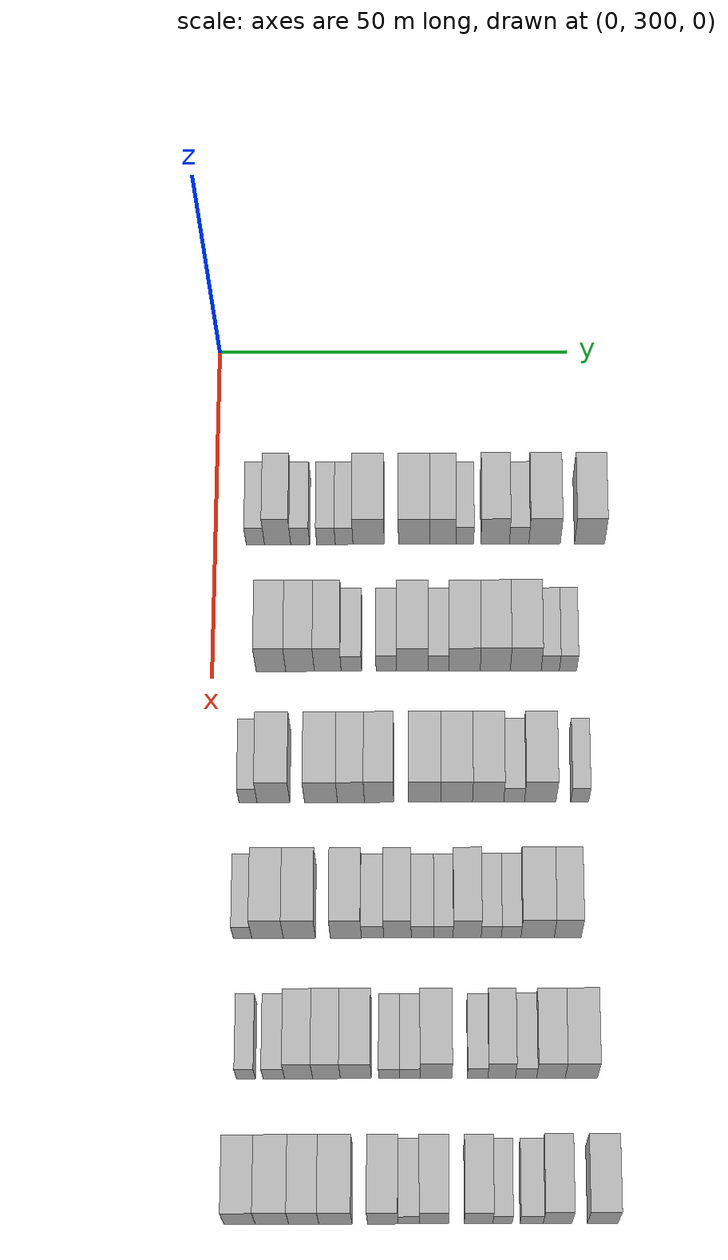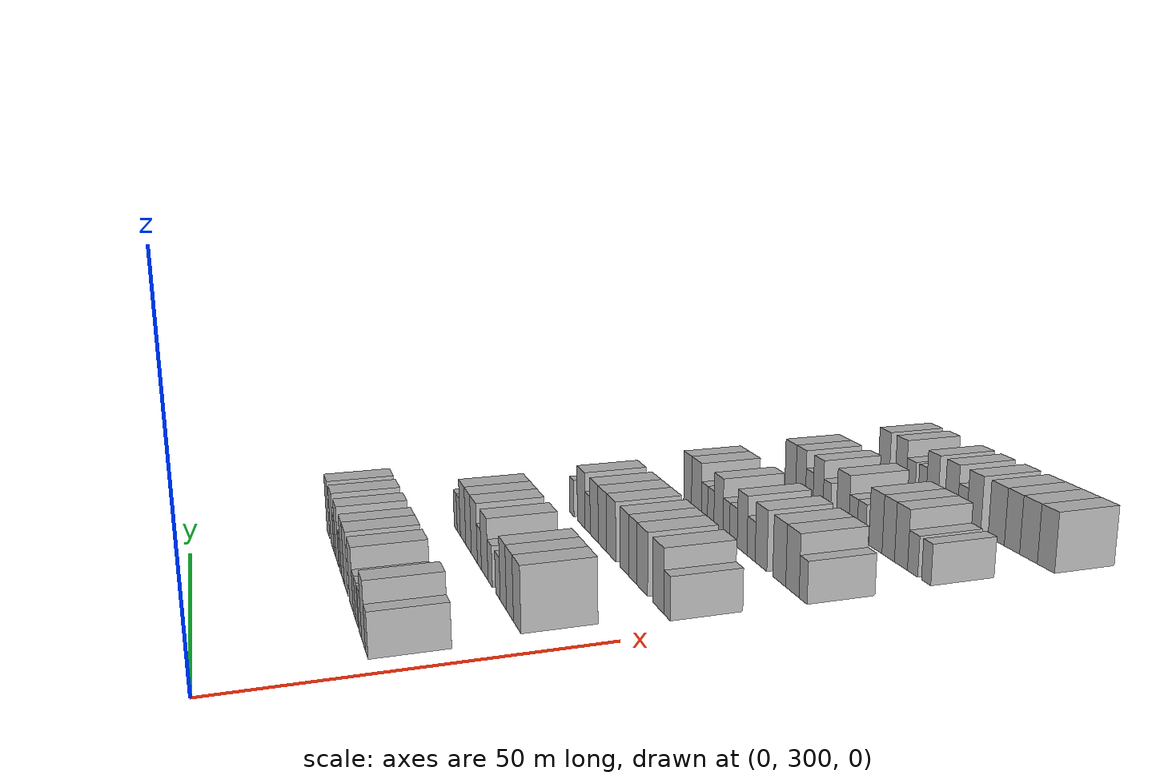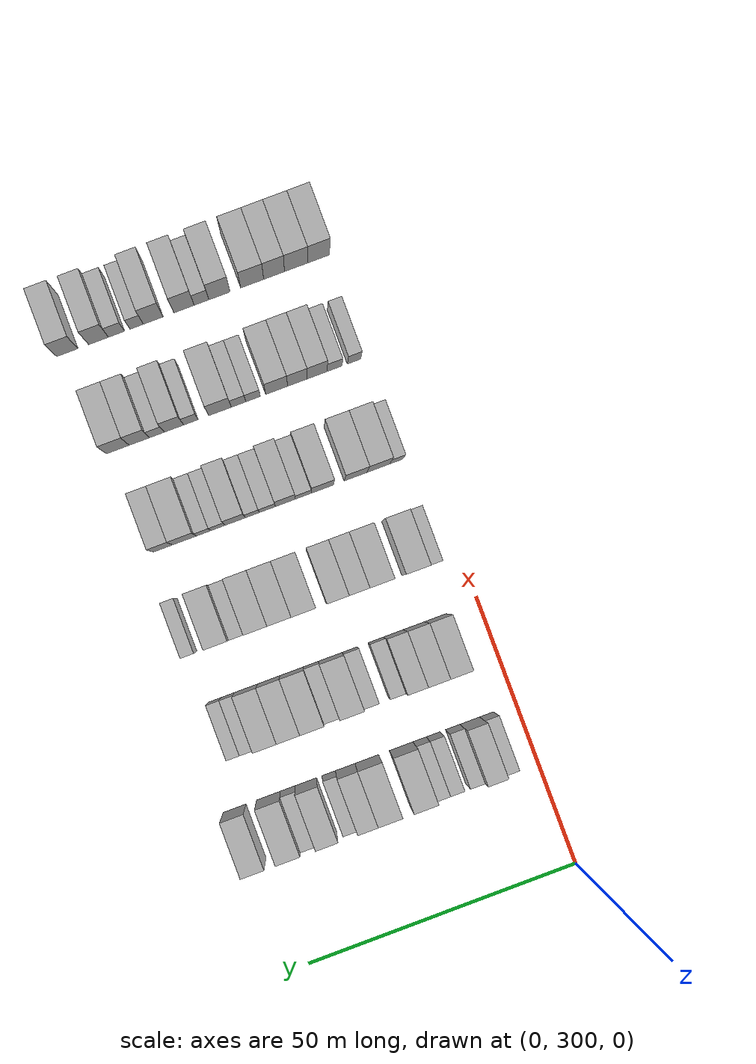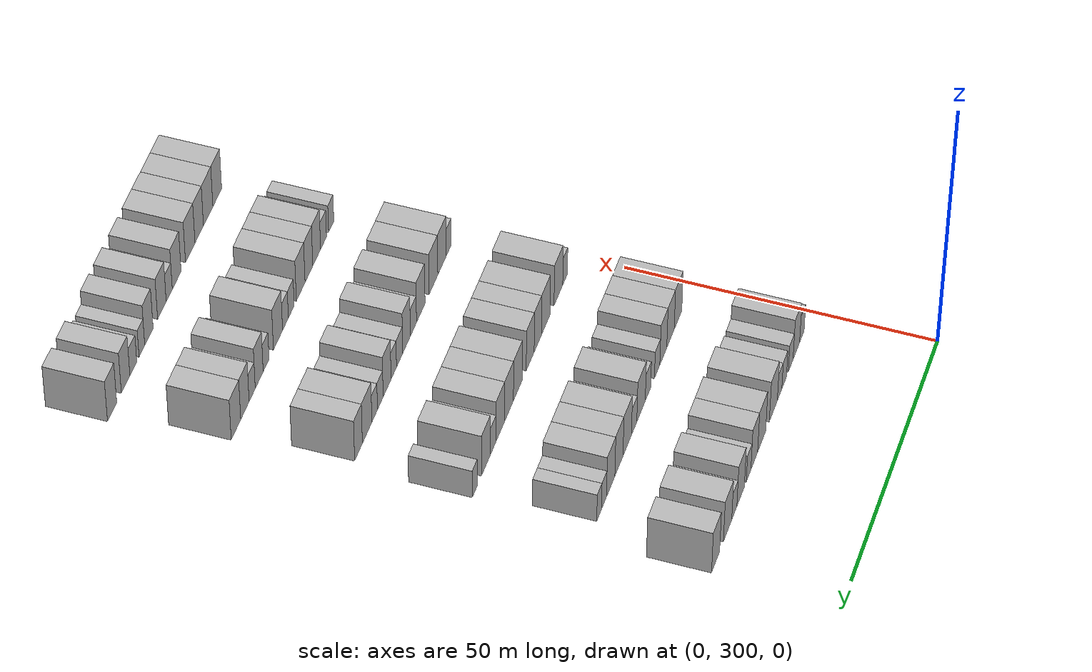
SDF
<sdf version="1.6">
 <world name="default">
  <model name="building_169">
   <static>1</static>
   <pose>25.0000 305.5659 0 0.000000 0.000000 0.000000</pose>
   <link name="link">
    <pose>0 0 3.00 0 0 0</pose>
    <collision name="collision"><geometry><box><size>10.0000 2.5611 6.0000</size></box></geometry></collision>
    <visual name="visual">
     <cast_shadows>0</cast_shadows>
     <geometry><box><size>10.0000 2.5611 6.0000</size></box></geometry>
     <material>
      <script>
       <uri>model://HANNAS_wall/materials/scripts</uri>
       <uri>model://HANNAS_wall/materials/textures</uri>
       <name>vrc/HANNAS_wall</name>
      </script>
     </material>
    </visual>
   </link>
  </model>
  <model name="building_170">
   <static>1</static>
   <pose>25.0000 308.6960 0 0.000000 0.000000 0.000000</pose>
   <link name="link">
    <pose>0 0 4.50 0 0 0</pose>
    <collision name="collision"><geometry><box><size>10.0000 3.6992 9.0000</size></box></geometry></collision>
    <visual name="visual">
     <cast_shadows>0</cast_shadows>
     <geometry><box><size>10.0000 3.6992 9.0000</size></box></geometry>
     <material>
      <script>
       <uri>model://HANNAS_wall/materials/scripts</uri>
       <uri>model://HANNAS_wall/materials/textures</uri>
       <name>vrc/HANNAS_wall</name>
      </script>
     </material>
    </visual>
   </link>
  </model>
  <model name="building_171">
   <static>1</static>
   <pose>25.0000 311.8833 0 0.000000 0.000000 0.000000</pose>
   <link name="link">
    <pose>0 0 3.00 0 0 0</pose>
    <collision name="collision"><geometry><box><size>10.0000 2.6753 6.0000</size></box></geometry></collision>
    <visual name="visual">
     <cast_shadows>0</cast_shadows>
     <geometry><box><size>10.0000 2.6753 6.0000</size></box></geometry>
     <material>
      <script>
       <uri>model://HANNAS_wall/materials/scripts</uri>
       <uri>model://HANNAS_wall/materials/textures</uri>
       <name>vrc/HANNAS_wall</name>
      </script>
     </material>
    </visual>
   </link>
  </model>
  <model name="building_172">
   <static>1</static>
   <pose>25.0000 315.5202 0 0.000000 0.000000 0.000000</pose>
   <link name="link">
    <pose>0 0 3.00 0 0 0</pose>
    <collision name="collision"><geometry><box><size>10.0000 2.5986 6.0000</size></box></geometry></collision>
    <visual name="visual">
     <cast_shadows>0</cast_shadows>
     <geometry><box><size>10.0000 2.5986 6.0000</size></box></geometry>
     <material>
      <script>
       <uri>model://HANNAS_wall/materials/scripts</uri>
       <uri>model://HANNAS_wall/materials/textures</uri>
       <name>vrc/HANNAS_wall</name>
      </script>
     </material>
    </visual>
   </link>
  </model>
  <model name="building_173">
   <static>1</static>
   <pose>25.0000 318.0655 0 0.000000 0.000000 0.000000</pose>
   <link name="link">
    <pose>0 0 3.00 0 0 0</pose>
    <collision name="collision"><geometry><box><size>10.0000 2.4919 6.0000</size></box></geometry></collision>
    <visual name="visual">
     <cast_shadows>0</cast_shadows>
     <geometry><box><size>10.0000 2.4919 6.0000</size></box></geometry>
     <material>
      <script>
       <uri>model://HANNAS_wall/materials/scripts</uri>
       <uri>model://HANNAS_wall/materials/textures</uri>
       <name>vrc/HANNAS_wall</name>
      </script>
     </material>
    </visual>
   </link>
  </model>
  <model name="building_174">
   <static>1</static>
   <pose>25.0000 321.5202 0 0.000000 0.000000 0.000000</pose>
   <link name="link">
    <pose>0 0 4.50 0 0 0</pose>
    <collision name="collision"><geometry><box><size>10.0000 4.4175 9.0000</size></box></geometry></collision>
    <visual name="visual">
     <cast_shadows>0</cast_shadows>
     <geometry><box><size>10.0000 4.4175 9.0000</size></box></geometry>
     <material>
      <script>
       <uri>model://HANNAS_wall/materials/scripts</uri>
       <uri>model://HANNAS_wall/materials/textures</uri>
       <name>vrc/HANNAS_wall</name>
      </script>
     </material>
    </visual>
   </link>
  </model>
  <model name="building_175">
   <static>1</static>
   <pose>25.0000 327.9294 0 0.000000 0.000000 0.000000</pose>
   <link name="link">
    <pose>0 0 4.50 0 0 0</pose>
    <collision name="collision"><geometry><box><size>10.0000 4.4010 9.0000</size></box></geometry></collision>
    <visual name="visual">
     <cast_shadows>0</cast_shadows>
     <geometry><box><size>10.0000 4.4010 9.0000</size></box></geometry>
     <material>
      <script>
       <uri>model://HANNAS_wall/materials/scripts</uri>
       <uri>model://HANNAS_wall/materials/textures</uri>
       <name>vrc/HANNAS_wall</name>
      </script>
     </material>
    </visual>
   </link>
  </model>
  <model name="building_176">
   <static>1</static>
   <pose>25.0000 331.9588 0 0.000000 0.000000 0.000000</pose>
   <link name="link">
    <pose>0 0 4.50 0 0 0</pose>
    <collision name="collision"><geometry><box><size>10.0000 3.6577 9.0000</size></box></geometry></collision>
    <visual name="visual">
     <cast_shadows>0</cast_shadows>
     <geometry><box><size>10.0000 3.6577 9.0000</size></box></geometry>
     <material>
      <script>
       <uri>model://HANNAS_wall/materials/scripts</uri>
       <uri>model://HANNAS_wall/materials/textures</uri>
       <name>vrc/HANNAS_wall</name>
      </script>
     </material>
    </visual>
   </link>
  </model>
  <model name="building_177">
   <static>1</static>
   <pose>25.0000 335.0451 0 0.000000 0.000000 0.000000</pose>
   <link name="link">
    <pose>0 0 3.00 0 0 0</pose>
    <collision name="collision"><geometry><box><size>10.0000 2.5151 6.0000</size></box></geometry></collision>
    <visual name="visual">
     <cast_shadows>0</cast_shadows>
     <geometry><box><size>10.0000 2.5151 6.0000</size></box></geometry>
     <material>
      <script>
       <uri>model://HANNAS_wall/materials/scripts</uri>
       <uri>model://HANNAS_wall/materials/textures</uri>
       <name>vrc/HANNAS_wall</name>
      </script>
     </material>
    </visual>
   </link>
  </model>
  <model name="building_178">
   <static>1</static>
   <pose>25.0000 339.3171 0 0.000000 0.000000 0.000000</pose>
   <link name="link">
    <pose>0 0 4.50 0 0 0</pose>
    <collision name="collision"><geometry><box><size>10.0000 4.0288 9.0000</size></box></geometry></collision>
    <visual name="visual">
     <cast_shadows>0</cast_shadows>
     <geometry><box><size>10.0000 4.0288 9.0000</size></box></geometry>
     <material>
      <script>
       <uri>model://HANNAS_wall/materials/scripts</uri>
       <uri>model://HANNAS_wall/materials/textures</uri>
       <name>vrc/HANNAS_wall</name>
      </script>
     </material>
    </visual>
   </link>
  </model>
  <model name="building_179">
   <static>1</static>
   <pose>25.0000 342.7024 0 0.000000 0.000000 0.000000</pose>
   <link name="link">
    <pose>0 0 3.00 0 0 0</pose>
    <collision name="collision"><geometry><box><size>10.0000 2.7419 6.0000</size></box></geometry></collision>
    <visual name="visual">
     <cast_shadows>0</cast_shadows>
     <geometry><box><size>10.0000 2.7419 6.0000</size></box></geometry>
     <material>
      <script>
       <uri>model://HANNAS_wall/materials/scripts</uri>
       <uri>model://HANNAS_wall/materials/textures</uri>
       <name>vrc/HANNAS_wall</name>
      </script>
     </material>
    </visual>
   </link>
  </model>
  <model name="building_180">
   <static>1</static>
   <pose>25.0000 346.2835 0 0.000000 0.000000 0.000000</pose>
   <link name="link">
    <pose>0 0 4.50 0 0 0</pose>
    <collision name="collision"><geometry><box><size>10.0000 4.4203 9.0000</size></box></geometry></collision>
    <visual name="visual">
     <cast_shadows>0</cast_shadows>
     <geometry><box><size>10.0000 4.4203 9.0000</size></box></geometry>
     <material>
      <script>
       <uri>model://HANNAS_wall/materials/scripts</uri>
       <uri>model://HANNAS_wall/materials/textures</uri>
       <name>vrc/HANNAS_wall</name>
      </script>
     </material>
    </visual>
   </link>
  </model>
  <model name="building_181">
   <static>1</static>
   <pose>25.0000 352.6140 0 0.000000 0.000000 0.000000</pose>
   <link name="link">
    <pose>0 0 4.50 0 0 0</pose>
    <collision name="collision"><geometry><box><size>10.0000 4.2406 9.0000</size></box></geometry></collision>
    <visual name="visual">
     <cast_shadows>0</cast_shadows>
     <geometry><box><size>10.0000 4.2406 9.0000</size></box></geometry>
     <material>
      <script>
       <uri>model://HANNAS_wall/materials/scripts</uri>
       <uri>model://HANNAS_wall/materials/textures</uri>
       <name>vrc/HANNAS_wall</name>
      </script>
     </material>
    </visual>
   </link>
  </model>
  <model name="building_340">
   <static>1</static>
   <pose>44.0000 308.0759 0 0.000000 0.000000 0.000000</pose>
   <link name="link">
    <pose>0 0 4.50 0 0 0</pose>
    <collision name="collision"><geometry><box><size>10.0000 4.0935 9.0000</size></box></geometry></collision>
    <visual name="visual">
     <cast_shadows>0</cast_shadows>
     <geometry><box><size>10.0000 4.0935 9.0000</size></box></geometry>
     <material>
      <script>
       <uri>model://HANNAS_wall/materials/scripts</uri>
       <uri>model://HANNAS_wall/materials/textures</uri>
       <name>vrc/HANNAS_wall</name>
      </script>
     </material>
    </visual>
   </link>
  </model>
  <model name="building_341">
   <static>1</static>
   <pose>44.0000 312.1047 0 0.000000 0.000000 0.000000</pose>
   <link name="link">
    <pose>0 0 4.50 0 0 0</pose>
    <collision name="collision"><geometry><box><size>10.0000 3.9641 9.0000</size></box></geometry></collision>
    <visual name="visual">
     <cast_shadows>0</cast_shadows>
     <geometry><box><size>10.0000 3.9641 9.0000</size></box></geometry>
     <material>
      <script>
       <uri>model://HANNAS_wall/materials/scripts</uri>
       <uri>model://HANNAS_wall/materials/textures</uri>
       <name>vrc/HANNAS_wall</name>
      </script>
     </material>
    </visual>
   </link>
  </model>
  <model name="building_342">
   <static>1</static>
   <pose>44.0000 315.9411 0 0.000000 0.000000 0.000000</pose>
   <link name="link">
    <pose>0 0 4.50 0 0 0</pose>
    <collision name="collision"><geometry><box><size>10.0000 3.7086 9.0000</size></box></geometry></collision>
    <visual name="visual">
     <cast_shadows>0</cast_shadows>
     <geometry><box><size>10.0000 3.7086 9.0000</size></box></geometry>
     <material>
      <script>
       <uri>model://HANNAS_wall/materials/scripts</uri>
       <uri>model://HANNAS_wall/materials/textures</uri>
       <name>vrc/HANNAS_wall</name>
      </script>
     </material>
    </visual>
   </link>
  </model>
  <model name="building_343">
   <static>1</static>
   <pose>44.0000 319.2170 0 0.000000 0.000000 0.000000</pose>
   <link name="link">
    <pose>0 0 3.00 0 0 0</pose>
    <collision name="collision"><geometry><box><size>10.0000 2.8432 6.0000</size></box></geometry></collision>
    <visual name="visual">
     <cast_shadows>0</cast_shadows>
     <geometry><box><size>10.0000 2.8432 6.0000</size></box></geometry>
     <material>
      <script>
       <uri>model://HANNAS_wall/materials/scripts</uri>
       <uri>model://HANNAS_wall/materials/textures</uri>
       <name>vrc/HANNAS_wall</name>
      </script>
     </material>
    </visual>
   </link>
  </model>
  <model name="building_344">
   <static>1</static>
   <pose>44.0000 324.0569 0 0.000000 0.000000 0.000000</pose>
   <link name="link">
    <pose>0 0 3.00 0 0 0</pose>
    <collision name="collision"><geometry><box><size>10.0000 2.8367 6.0000</size></box></geometry></collision>
    <visual name="visual">
     <cast_shadows>0</cast_shadows>
     <geometry><box><size>10.0000 2.8367 6.0000</size></box></geometry>
     <material>
      <script>
       <uri>model://HANNAS_wall/materials/scripts</uri>
       <uri>model://HANNAS_wall/materials/textures</uri>
       <name>vrc/HANNAS_wall</name>
      </script>
     </material>
    </visual>
   </link>
  </model>
  <model name="building_345">
   <static>1</static>
   <pose>44.0000 327.6818 0 0.000000 0.000000 0.000000</pose>
   <link name="link">
    <pose>0 0 4.50 0 0 0</pose>
    <collision name="collision"><geometry><box><size>10.0000 4.4131 9.0000</size></box></geometry></collision>
    <visual name="visual">
     <cast_shadows>0</cast_shadows>
     <geometry><box><size>10.0000 4.4131 9.0000</size></box></geometry>
     <material>
      <script>
       <uri>model://HANNAS_wall/materials/scripts</uri>
       <uri>model://HANNAS_wall/materials/textures</uri>
       <name>vrc/HANNAS_wall</name>
      </script>
     </material>
    </visual>
   </link>
  </model>
  <model name="building_346">
   <static>1</static>
   <pose>44.0000 331.2878 0 0.000000 0.000000 0.000000</pose>
   <link name="link">
    <pose>0 0 3.00 0 0 0</pose>
    <collision name="collision"><geometry><box><size>10.0000 2.7989 6.0000</size></box></geometry></collision>
    <visual name="visual">
     <cast_shadows>0</cast_shadows>
     <geometry><box><size>10.0000 2.7989 6.0000</size></box></geometry>
     <material>
      <script>
       <uri>model://HANNAS_wall/materials/scripts</uri>
       <uri>model://HANNAS_wall/materials/textures</uri>
       <name>vrc/HANNAS_wall</name>
      </script>
     </material>
    </visual>
   </link>
  </model>
  <model name="building_347">
   <static>1</static>
   <pose>44.0000 334.8622 0 0.000000 0.000000 0.000000</pose>
   <link name="link">
    <pose>0 0 4.50 0 0 0</pose>
    <collision name="collision"><geometry><box><size>10.0000 4.3498 9.0000</size></box></geometry></collision>
    <visual name="visual">
     <cast_shadows>0</cast_shadows>
     <geometry><box><size>10.0000 4.3498 9.0000</size></box></geometry>
     <material>
      <script>
       <uri>model://HANNAS_wall/materials/scripts</uri>
       <uri>model://HANNAS_wall/materials/textures</uri>
       <name>vrc/HANNAS_wall</name>
      </script>
     </material>
    </visual>
   </link>
  </model>
  <model name="building_348">
   <static>1</static>
   <pose>44.0000 339.1247 0 0.000000 0.000000 0.000000</pose>
   <link name="link">
    <pose>0 0 4.50 0 0 0</pose>
    <collision name="collision"><geometry><box><size>10.0000 4.1752 9.0000</size></box></geometry></collision>
    <visual name="visual">
     <cast_shadows>0</cast_shadows>
     <geometry><box><size>10.0000 4.1752 9.0000</size></box></geometry>
     <material>
      <script>
       <uri>model://HANNAS_wall/materials/scripts</uri>
       <uri>model://HANNAS_wall/materials/textures</uri>
       <name>vrc/HANNAS_wall</name>
      </script>
     </material>
    </visual>
   </link>
  </model>
  <model name="building_349">
   <static>1</static>
   <pose>44.0000 343.3476 0 0.000000 0.000000 0.000000</pose>
   <link name="link">
    <pose>0 0 4.50 0 0 0</pose>
    <collision name="collision"><geometry><box><size>10.0000 4.2706 9.0000</size></box></geometry></collision>
    <visual name="visual">
     <cast_shadows>0</cast_shadows>
     <geometry><box><size>10.0000 4.2706 9.0000</size></box></geometry>
     <material>
      <script>
       <uri>model://HANNAS_wall/materials/scripts</uri>
       <uri>model://HANNAS_wall/materials/textures</uri>
       <name>vrc/HANNAS_wall</name>
      </script>
     </material>
    </visual>
   </link>
  </model>
  <model name="building_350">
   <static>1</static>
   <pose>44.0000 346.7445 0 0.000000 0.000000 0.000000</pose>
   <link name="link">
    <pose>0 0 3.00 0 0 0</pose>
    <collision name="collision"><geometry><box><size>10.0000 2.5233 6.0000</size></box></geometry></collision>
    <visual name="visual">
     <cast_shadows>0</cast_shadows>
     <geometry><box><size>10.0000 2.5233 6.0000</size></box></geometry>
     <material>
      <script>
       <uri>model://HANNAS_wall/materials/scripts</uri>
       <uri>model://HANNAS_wall/materials/textures</uri>
       <name>vrc/HANNAS_wall</name>
      </script>
     </material>
    </visual>
   </link>
  </model>
  <model name="building_351">
   <static>1</static>
   <pose>44.0000 349.2096 0 0.000000 0.000000 0.000000</pose>
   <link name="link">
    <pose>0 0 3.00 0 0 0</pose>
    <collision name="collision"><geometry><box><size>10.0000 2.4067 6.0000</size></box></geometry></collision>
    <visual name="visual">
     <cast_shadows>0</cast_shadows>
     <geometry><box><size>10.0000 2.4067 6.0000</size></box></geometry>
     <material>
      <script>
       <uri>model://HANNAS_wall/materials/scripts</uri>
       <uri>model://HANNAS_wall/materials/textures</uri>
       <name>vrc/HANNAS_wall</name>
      </script>
     </material>
    </visual>
   </link>
  </model>
  <model name="building_510">
   <static>1</static>
   <pose>63.0000 305.2696 0 0.000000 0.000000 0.000000</pose>
   <link name="link">
    <pose>0 0 3.00 0 0 0</pose>
    <collision name="collision"><geometry><box><size>10.0000 2.4603 6.0000</size></box></geometry></collision>
    <visual name="visual">
     <cast_shadows>0</cast_shadows>
     <geometry><box><size>10.0000 2.4603 6.0000</size></box></geometry>
     <material>
      <script>
       <uri>model://HANNAS_wall/materials/scripts</uri>
       <uri>model://HANNAS_wall/materials/textures</uri>
       <name>vrc/HANNAS_wall</name>
      </script>
     </material>
    </visual>
   </link>
  </model>
  <model name="building_511">
   <static>1</static>
   <pose>63.0000 308.7327 0 0.000000 0.000000 0.000000</pose>
   <link name="link">
    <pose>0 0 4.50 0 0 0</pose>
    <collision name="collision"><geometry><box><size>10.0000 4.4658 9.0000</size></box></geometry></collision>
    <visual name="visual">
     <cast_shadows>0</cast_shadows>
     <geometry><box><size>10.0000 4.4658 9.0000</size></box></geometry>
     <material>
      <script>
       <uri>model://HANNAS_wall/materials/scripts</uri>
       <uri>model://HANNAS_wall/materials/textures</uri>
       <name>vrc/HANNAS_wall</name>
      </script>
     </material>
    </visual>
   </link>
  </model>
  <model name="building_512">
   <static>1</static>
   <pose>63.0000 315.1989 0 0.000000 0.000000 0.000000</pose>
   <link name="link">
    <pose>0 0 4.50 0 0 0</pose>
    <collision name="collision"><geometry><box><size>10.0000 4.4667 9.0000</size></box></geometry></collision>
    <visual name="visual">
     <cast_shadows>0</cast_shadows>
     <geometry><box><size>10.0000 4.4667 9.0000</size></box></geometry>
     <material>
      <script>
       <uri>model://HANNAS_wall/materials/scripts</uri>
       <uri>model://HANNAS_wall/materials/textures</uri>
       <name>vrc/HANNAS_wall</name>
      </script>
     </material>
    </visual>
   </link>
  </model>
  <model name="building_513">
   <static>1</static>
   <pose>63.0000 319.2697 0 0.000000 0.000000 0.000000</pose>
   <link name="link">
    <pose>0 0 4.50 0 0 0</pose>
    <collision name="collision"><geometry><box><size>10.0000 3.6749 9.0000</size></box></geometry></collision>
    <visual name="visual">
     <cast_shadows>0</cast_shadows>
     <geometry><box><size>10.0000 3.6749 9.0000</size></box></geometry>
     <material>
      <script>
       <uri>model://HANNAS_wall/materials/scripts</uri>
       <uri>model://HANNAS_wall/materials/textures</uri>
       <name>vrc/HANNAS_wall</name>
      </script>
     </material>
    </visual>
   </link>
  </model>
  <model name="building_514">
   <static>1</static>
   <pose>63.0000 323.1020 0 0.000000 0.000000 0.000000</pose>
   <link name="link">
    <pose>0 0 4.50 0 0 0</pose>
    <collision name="collision"><geometry><box><size>10.0000 3.9897 9.0000</size></box></geometry></collision>
    <visual name="visual">
     <cast_shadows>0</cast_shadows>
     <geometry><box><size>10.0000 3.9897 9.0000</size></box></geometry>
     <material>
      <script>
       <uri>model://HANNAS_wall/materials/scripts</uri>
       <uri>model://HANNAS_wall/materials/textures</uri>
       <name>vrc/HANNAS_wall</name>
      </script>
     </material>
    </visual>
   </link>
  </model>
  <model name="building_515">
   <static>1</static>
   <pose>63.0000 329.2971 0 0.000000 0.000000 0.000000</pose>
   <link name="link">
    <pose>0 0 4.50 0 0 0</pose>
    <collision name="collision"><geometry><box><size>10.0000 4.4004 9.0000</size></box></geometry></collision>
    <visual name="visual">
     <cast_shadows>0</cast_shadows>
     <geometry><box><size>10.0000 4.4004 9.0000</size></box></geometry>
     <material>
      <script>
       <uri>model://HANNAS_wall/materials/scripts</uri>
       <uri>model://HANNAS_wall/materials/textures</uri>
       <name>vrc/HANNAS_wall</name>
      </script>
     </material>
    </visual>
   </link>
  </model>
  <model name="building_516">
   <static>1</static>
   <pose>63.0000 333.6548 0 0.000000 0.000000 0.000000</pose>
   <link name="link">
    <pose>0 0 4.50 0 0 0</pose>
    <collision name="collision"><geometry><box><size>10.0000 4.3151 9.0000</size></box></geometry></collision>
    <visual name="visual">
     <cast_shadows>0</cast_shadows>
     <geometry><box><size>10.0000 4.3151 9.0000</size></box></geometry>
     <material>
      <script>
       <uri>model://HANNAS_wall/materials/scripts</uri>
       <uri>model://HANNAS_wall/materials/textures</uri>
       <name>vrc/HANNAS_wall</name>
      </script>
     </material>
    </visual>
   </link>
  </model>
  <model name="building_517">
   <static>1</static>
   <pose>63.0000 337.9384 0 0.000000 0.000000 0.000000</pose>
   <link name="link">
    <pose>0 0 4.50 0 0 0</pose>
    <collision name="collision"><geometry><box><size>10.0000 4.2520 9.0000</size></box></geometry></collision>
    <visual name="visual">
     <cast_shadows>0</cast_shadows>
     <geometry><box><size>10.0000 4.2520 9.0000</size></box></geometry>
     <material>
      <script>
       <uri>model://HANNAS_wall/materials/scripts</uri>
       <uri>model://HANNAS_wall/materials/textures</uri>
       <name>vrc/HANNAS_wall</name>
      </script>
     </material>
    </visual>
   </link>
  </model>
  <model name="building_518">
   <static>1</static>
   <pose>63.0000 341.4818 0 0.000000 0.000000 0.000000</pose>
   <link name="link">
    <pose>0 0 3.00 0 0 0</pose>
    <collision name="collision"><geometry><box><size>10.0000 2.8349 6.0000</size></box></geometry></collision>
    <visual name="visual">
     <cast_shadows>0</cast_shadows>
     <geometry><box><size>10.0000 2.8349 6.0000</size></box></geometry>
     <material>
      <script>
       <uri>model://HANNAS_wall/materials/scripts</uri>
       <uri>model://HANNAS_wall/materials/textures</uri>
       <name>vrc/HANNAS_wall</name>
      </script>
     </material>
    </visual>
   </link>
  </model>
  <model name="building_519">
   <static>1</static>
   <pose>63.0000 345.0499 0 0.000000 0.000000 0.000000</pose>
   <link name="link">
    <pose>0 0 4.50 0 0 0</pose>
    <collision name="collision"><geometry><box><size>10.0000 4.3014 9.0000</size></box></geometry></collision>
    <visual name="visual">
     <cast_shadows>0</cast_shadows>
     <geometry><box><size>10.0000 4.3014 9.0000</size></box></geometry>
     <material>
      <script>
       <uri>model://HANNAS_wall/materials/scripts</uri>
       <uri>model://HANNAS_wall/materials/textures</uri>
       <name>vrc/HANNAS_wall</name>
      </script>
     </material>
    </visual>
   </link>
  </model>
  <model name="building_520">
   <static>1</static>
   <pose>63.0000 350.4266 0 0.000000 0.000000 0.000000</pose>
   <link name="link">
    <pose>0 0 3.00 0 0 0</pose>
    <collision name="collision"><geometry><box><size>10.0000 2.4522 6.0000</size></box></geometry></collision>
    <visual name="visual">
     <cast_shadows>0</cast_shadows>
     <geometry><box><size>10.0000 2.4522 6.0000</size></box></geometry>
     <material>
      <script>
       <uri>model://HANNAS_wall/materials/scripts</uri>
       <uri>model://HANNAS_wall/materials/textures</uri>
       <name>vrc/HANNAS_wall</name>
      </script>
     </material>
    </visual>
   </link>
  </model>
  <model name="building_670">
   <static>1</static>
   <pose>82.0000 304.8961 0 0.000000 0.000000 0.000000</pose>
   <link name="link">
    <pose>0 0 3.00 0 0 0</pose>
    <collision name="collision"><geometry><box><size>10.0000 2.4703 6.0000</size></box></geometry></collision>
    <visual name="visual">
     <cast_shadows>0</cast_shadows>
     <geometry><box><size>10.0000 2.4703 6.0000</size></box></geometry>
     <material>
      <script>
       <uri>model://HANNAS_wall/materials/scripts</uri>
       <uri>model://HANNAS_wall/materials/textures</uri>
       <name>vrc/HANNAS_wall</name>
      </script>
     </material>
    </visual>
   </link>
  </model>
  <model name="building_671">
   <static>1</static>
   <pose>82.0000 308.2459 0 0.000000 0.000000 0.000000</pose>
   <link name="link">
    <pose>0 0 4.50 0 0 0</pose>
    <collision name="collision"><geometry><box><size>10.0000 4.2294 9.0000</size></box></geometry></collision>
    <visual name="visual">
     <cast_shadows>0</cast_shadows>
     <geometry><box><size>10.0000 4.2294 9.0000</size></box></geometry>
     <material>
      <script>
       <uri>model://HANNAS_wall/materials/scripts</uri>
       <uri>model://HANNAS_wall/materials/textures</uri>
       <name>vrc/HANNAS_wall</name>
      </script>
     </material>
    </visual>
   </link>
  </model>
  <model name="building_672">
   <static>1</static>
   <pose>82.0000 312.5039 0 0.000000 0.000000 0.000000</pose>
   <link name="link">
    <pose>0 0 4.50 0 0 0</pose>
    <collision name="collision"><geometry><box><size>10.0000 4.2866 9.0000</size></box></geometry></collision>
    <visual name="visual">
     <cast_shadows>0</cast_shadows>
     <geometry><box><size>10.0000 4.2866 9.0000</size></box></geometry>
     <material>
      <script>
       <uri>model://HANNAS_wall/materials/scripts</uri>
       <uri>model://HANNAS_wall/materials/textures</uri>
       <name>vrc/HANNAS_wall</name>
      </script>
     </material>
    </visual>
   </link>
  </model>
  <model name="building_673">
   <static>1</static>
   <pose>82.0000 318.7229 0 0.000000 0.000000 0.000000</pose>
   <link name="link">
    <pose>0 0 4.50 0 0 0</pose>
    <collision name="collision"><geometry><box><size>10.0000 4.1513 9.0000</size></box></geometry></collision>
    <visual name="visual">
     <cast_shadows>0</cast_shadows>
     <geometry><box><size>10.0000 4.1513 9.0000</size></box></geometry>
     <material>
      <script>
       <uri>model://HANNAS_wall/materials/scripts</uri>
       <uri>model://HANNAS_wall/materials/textures</uri>
       <name>vrc/HANNAS_wall</name>
      </script>
     </material>
    </visual>
   </link>
  </model>
  <model name="building_674">
   <static>1</static>
   <pose>82.0000 322.2878 0 0.000000 0.000000 0.000000</pose>
   <link name="link">
    <pose>0 0 3.00 0 0 0</pose>
    <collision name="collision"><geometry><box><size>10.0000 2.9786 6.0000</size></box></geometry></collision>
    <visual name="visual">
     <cast_shadows>0</cast_shadows>
     <geometry><box><size>10.0000 2.9786 6.0000</size></box></geometry>
     <material>
      <script>
       <uri>model://HANNAS_wall/materials/scripts</uri>
       <uri>model://HANNAS_wall/materials/textures</uri>
       <name>vrc/HANNAS_wall</name>
      </script>
     </material>
    </visual>
   </link>
  </model>
  <model name="building_675">
   <static>1</static>
   <pose>82.0000 325.6197 0 0.000000 0.000000 0.000000</pose>
   <link name="link">
    <pose>0 0 4.50 0 0 0</pose>
    <collision name="collision"><geometry><box><size>10.0000 3.6851 9.0000</size></box></geometry></collision>
    <visual name="visual">
     <cast_shadows>0</cast_shadows>
     <geometry><box><size>10.0000 3.6851 9.0000</size></box></geometry>
     <material>
      <script>
       <uri>model://HANNAS_wall/materials/scripts</uri>
       <uri>model://HANNAS_wall/materials/textures</uri>
       <name>vrc/HANNAS_wall</name>
      </script>
     </material>
    </visual>
   </link>
  </model>
  <model name="building_676">
   <static>1</static>
   <pose>82.0000 328.9576 0 0.000000 0.000000 0.000000</pose>
   <link name="link">
    <pose>0 0 3.00 0 0 0</pose>
    <collision name="collision"><geometry><box><size>10.0000 2.9906 6.0000</size></box></geometry></collision>
    <visual name="visual">
     <cast_shadows>0</cast_shadows>
     <geometry><box><size>10.0000 2.9906 6.0000</size></box></geometry>
     <material>
      <script>
       <uri>model://HANNAS_wall/materials/scripts</uri>
       <uri>model://HANNAS_wall/materials/textures</uri>
       <name>vrc/HANNAS_wall</name>
      </script>
     </material>
    </visual>
   </link>
  </model>
  <model name="building_677">
   <static>1</static>
   <pose>82.0000 331.7592 0 0.000000 0.000000 0.000000</pose>
   <link name="link">
    <pose>0 0 3.00 0 0 0</pose>
    <collision name="collision"><geometry><box><size>10.0000 2.6126 6.0000</size></box></geometry></collision>
    <visual name="visual">
     <cast_shadows>0</cast_shadows>
     <geometry><box><size>10.0000 2.6126 6.0000</size></box></geometry>
     <material>
      <script>
       <uri>model://HANNAS_wall/materials/scripts</uri>
       <uri>model://HANNAS_wall/materials/textures</uri>
       <name>vrc/HANNAS_wall</name>
      </script>
     </material>
    </visual>
   </link>
  </model>
  <model name="building_678">
   <static>1</static>
   <pose>82.0000 334.9379 0 0.000000 0.000000 0.000000</pose>
   <link name="link">
    <pose>0 0 4.50 0 0 0</pose>
    <collision name="collision"><geometry><box><size>10.0000 3.7447 9.0000</size></box></geometry></collision>
    <visual name="visual">
     <cast_shadows>0</cast_shadows>
     <geometry><box><size>10.0000 3.7447 9.0000</size></box></geometry>
     <material>
      <script>
       <uri>model://HANNAS_wall/materials/scripts</uri>
       <uri>model://HANNAS_wall/materials/textures</uri>
       <name>vrc/HANNAS_wall</name>
      </script>
     </material>
    </visual>
   </link>
  </model>
  <model name="building_679">
   <static>1</static>
   <pose>82.0000 338.1572 0 0.000000 0.000000 0.000000</pose>
   <link name="link">
    <pose>0 0 3.00 0 0 0</pose>
    <collision name="collision"><geometry><box><size>10.0000 2.6940 6.0000</size></box></geometry></collision>
    <visual name="visual">
     <cast_shadows>0</cast_shadows>
     <geometry><box><size>10.0000 2.6940 6.0000</size></box></geometry>
     <material>
      <script>
       <uri>model://HANNAS_wall/materials/scripts</uri>
       <uri>model://HANNAS_wall/materials/textures</uri>
       <name>vrc/HANNAS_wall</name>
      </script>
     </material>
    </visual>
   </link>
  </model>
  <model name="building_680">
   <static>1</static>
   <pose>82.0000 340.8281 0 0.000000 0.000000 0.000000</pose>
   <link name="link">
    <pose>0 0 3.00 0 0 0</pose>
    <collision name="collision"><geometry><box><size>10.0000 2.6477 6.0000</size></box></geometry></collision>
    <visual name="visual">
     <cast_shadows>0</cast_shadows>
     <geometry><box><size>10.0000 2.6477 6.0000</size></box></geometry>
     <material>
      <script>
       <uri>model://HANNAS_wall/materials/scripts</uri>
       <uri>model://HANNAS_wall/materials/textures</uri>
       <name>vrc/HANNAS_wall</name>
      </script>
     </material>
    </visual>
   </link>
  </model>
  <model name="building_681">
   <static>1</static>
   <pose>82.0000 344.3747 0 0.000000 0.000000 0.000000</pose>
   <link name="link">
    <pose>0 0 4.50 0 0 0</pose>
    <collision name="collision"><geometry><box><size>10.0000 4.4456 9.0000</size></box></geometry></collision>
    <visual name="visual">
     <cast_shadows>0</cast_shadows>
     <geometry><box><size>10.0000 4.4456 9.0000</size></box></geometry>
     <material>
      <script>
       <uri>model://HANNAS_wall/materials/scripts</uri>
       <uri>model://HANNAS_wall/materials/textures</uri>
       <name>vrc/HANNAS_wall</name>
      </script>
     </material>
    </visual>
   </link>
  </model>
  <model name="building_682">
   <static>1</static>
   <pose>82.0000 348.4044 0 0.000000 0.000000 0.000000</pose>
   <link name="link">
    <pose>0 0 4.50 0 0 0</pose>
    <collision name="collision"><geometry><box><size>10.0000 3.6136 9.0000</size></box></geometry></collision>
    <visual name="visual">
     <cast_shadows>0</cast_shadows>
     <geometry><box><size>10.0000 3.6136 9.0000</size></box></geometry>
     <material>
      <script>
       <uri>model://HANNAS_wall/materials/scripts</uri>
       <uri>model://HANNAS_wall/materials/textures</uri>
       <name>vrc/HANNAS_wall</name>
      </script>
     </material>
    </visual>
   </link>
  </model>
  <model name="building_847">
   <static>1</static>
   <pose>101.0000 305.7305 0 0.000000 0.000000 0.000000</pose>
   <link name="link">
    <pose>0 0 3.00 0 0 0</pose>
    <collision name="collision"><geometry><box><size>10.0000 2.4840 6.0000</size></box></geometry></collision>
    <visual name="visual">
     <cast_shadows>0</cast_shadows>
     <geometry><box><size>10.0000 2.4840 6.0000</size></box></geometry>
     <material>
      <script>
       <uri>model://HANNAS_wall/materials/scripts</uri>
       <uri>model://HANNAS_wall/materials/textures</uri>
       <name>vrc/HANNAS_wall</name>
      </script>
     </material>
    </visual>
   </link>
  </model>
  <model name="building_848">
   <static>1</static>
   <pose>101.0000 309.3814 0 0.000000 0.000000 0.000000</pose>
   <link name="link">
    <pose>0 0 3.00 0 0 0</pose>
    <collision name="collision"><geometry><box><size>10.0000 2.8178 6.0000</size></box></geometry></collision>
    <visual name="visual">
     <cast_shadows>0</cast_shadows>
     <geometry><box><size>10.0000 2.8178 6.0000</size></box></geometry>
     <material>
      <script>
       <uri>model://HANNAS_wall/materials/scripts</uri>
       <uri>model://HANNAS_wall/materials/textures</uri>
       <name>vrc/HANNAS_wall</name>
      </script>
     </material>
    </visual>
   </link>
  </model>
  <model name="building_849">
   <static>1</static>
   <pose>101.0000 312.6362 0 0.000000 0.000000 0.000000</pose>
   <link name="link">
    <pose>0 0 4.50 0 0 0</pose>
    <collision name="collision"><geometry><box><size>10.0000 3.6918 9.0000</size></box></geometry></collision>
    <visual name="visual">
     <cast_shadows>0</cast_shadows>
     <geometry><box><size>10.0000 3.6918 9.0000</size></box></geometry>
     <material>
      <script>
       <uri>model://HANNAS_wall/materials/scripts</uri>
       <uri>model://HANNAS_wall/materials/textures</uri>
       <name>vrc/HANNAS_wall</name>
      </script>
     </material>
    </visual>
   </link>
  </model>
  <model name="building_850">
   <static>1</static>
   <pose>101.0000 316.3089 0 0.000000 0.000000 0.000000</pose>
   <link name="link">
    <pose>0 0 4.50 0 0 0</pose>
    <collision name="collision"><geometry><box><size>10.0000 3.6535 9.0000</size></box></geometry></collision>
    <visual name="visual">
     <cast_shadows>0</cast_shadows>
     <geometry><box><size>10.0000 3.6535 9.0000</size></box></geometry>
     <material>
      <script>
       <uri>model://HANNAS_wall/materials/scripts</uri>
       <uri>model://HANNAS_wall/materials/textures</uri>
       <name>vrc/HANNAS_wall</name>
      </script>
     </material>
    </visual>
   </link>
  </model>
  <model name="building_851">
   <static>1</static>
   <pose>101.0000 320.1707 0 0.000000 0.000000 0.000000</pose>
   <link name="link">
    <pose>0 0 4.50 0 0 0</pose>
    <collision name="collision"><geometry><box><size>10.0000 4.0702 9.0000</size></box></geometry></collision>
    <visual name="visual">
     <cast_shadows>0</cast_shadows>
     <geometry><box><size>10.0000 4.0702 9.0000</size></box></geometry>
     <material>
      <script>
       <uri>model://HANNAS_wall/materials/scripts</uri>
       <uri>model://HANNAS_wall/materials/textures</uri>
       <name>vrc/HANNAS_wall</name>
      </script>
     </material>
    </visual>
   </link>
  </model>
  <model name="building_852">
   <static>1</static>
   <pose>101.0000 324.5601 0 0.000000 0.000000 0.000000</pose>
   <link name="link">
    <pose>0 0 3.00 0 0 0</pose>
    <collision name="collision"><geometry><box><size>10.0000 2.7086 6.0000</size></box></geometry></collision>
    <visual name="visual">
     <cast_shadows>0</cast_shadows>
     <geometry><box><size>10.0000 2.7086 6.0000</size></box></geometry>
     <material>
      <script>
       <uri>model://HANNAS_wall/materials/scripts</uri>
       <uri>model://HANNAS_wall/materials/textures</uri>
       <name>vrc/HANNAS_wall</name>
      </script>
     </material>
    </visual>
   </link>
  </model>
  <model name="building_853">
   <static>1</static>
   <pose>101.0000 327.2630 0 0.000000 0.000000 0.000000</pose>
   <link name="link">
    <pose>0 0 3.00 0 0 0</pose>
    <collision name="collision"><geometry><box><size>10.0000 2.6972 6.0000</size></box></geometry></collision>
    <visual name="visual">
     <cast_shadows>0</cast_shadows>
     <geometry><box><size>10.0000 2.6972 6.0000</size></box></geometry>
     <material>
      <script>
       <uri>model://HANNAS_wall/materials/scripts</uri>
       <uri>model://HANNAS_wall/materials/textures</uri>
       <name>vrc/HANNAS_wall</name>
      </script>
     </material>
    </visual>
   </link>
  </model>
  <model name="building_854">
   <static>1</static>
   <pose>101.0000 330.7157 0 0.000000 0.000000 0.000000</pose>
   <link name="link">
    <pose>0 0 4.50 0 0 0</pose>
    <collision name="collision"><geometry><box><size>10.0000 4.2081 9.0000</size></box></geometry></collision>
    <visual name="visual">
     <cast_shadows>0</cast_shadows>
     <geometry><box><size>10.0000 4.2081 9.0000</size></box></geometry>
     <material>
      <script>
       <uri>model://HANNAS_wall/materials/scripts</uri>
       <uri>model://HANNAS_wall/materials/textures</uri>
       <name>vrc/HANNAS_wall</name>
      </script>
     </material>
    </visual>
   </link>
  </model>
  <model name="building_855">
   <static>1</static>
   <pose>101.0000 336.1697 0 0.000000 0.000000 0.000000</pose>
   <link name="link">
    <pose>0 0 3.00 0 0 0</pose>
    <collision name="collision"><geometry><box><size>10.0000 2.6999 6.0000</size></box></geometry></collision>
    <visual name="visual">
     <cast_shadows>0</cast_shadows>
     <geometry><box><size>10.0000 2.6999 6.0000</size></box></geometry>
     <material>
      <script>
       <uri>model://HANNAS_wall/materials/scripts</uri>
       <uri>model://HANNAS_wall/materials/textures</uri>
       <name>vrc/HANNAS_wall</name>
      </script>
     </material>
    </visual>
   </link>
  </model>
  <model name="building_856">
   <static>1</static>
   <pose>101.0000 339.3245 0 0.000000 0.000000 0.000000</pose>
   <link name="link">
    <pose>0 0 4.50 0 0 0</pose>
    <collision name="collision"><geometry><box><size>10.0000 3.6099 9.0000</size></box></geometry></collision>
    <visual name="visual">
     <cast_shadows>0</cast_shadows>
     <geometry><box><size>10.0000 3.6099 9.0000</size></box></geometry>
     <material>
      <script>
       <uri>model://HANNAS_wall/materials/scripts</uri>
       <uri>model://HANNAS_wall/materials/textures</uri>
       <name>vrc/HANNAS_wall</name>
      </script>
     </material>
    </visual>
   </link>
  </model>
  <model name="building_857">
   <static>1</static>
   <pose>101.0000 342.5241 0 0.000000 0.000000 0.000000</pose>
   <link name="link">
    <pose>0 0 3.00 0 0 0</pose>
    <collision name="collision"><geometry><box><size>10.0000 2.7894 6.0000</size></box></geometry></collision>
    <visual name="visual">
     <cast_shadows>0</cast_shadows>
     <geometry><box><size>10.0000 2.7894 6.0000</size></box></geometry>
     <material>
      <script>
       <uri>model://HANNAS_wall/materials/scripts</uri>
       <uri>model://HANNAS_wall/materials/textures</uri>
       <name>vrc/HANNAS_wall</name>
      </script>
     </material>
    </visual>
   </link>
  </model>
  <model name="building_858">
   <static>1</static>
   <pose>101.0000 345.7996 0 0.000000 0.000000 0.000000</pose>
   <link name="link">
    <pose>0 0 4.50 0 0 0</pose>
    <collision name="collision"><geometry><box><size>10.0000 3.7615 9.0000</size></box></geometry></collision>
    <visual name="visual">
     <cast_shadows>0</cast_shadows>
     <geometry><box><size>10.0000 3.7615 9.0000</size></box></geometry>
     <material>
      <script>
       <uri>model://HANNAS_wall/materials/scripts</uri>
       <uri>model://HANNAS_wall/materials/textures</uri>
       <name>vrc/HANNAS_wall</name>
      </script>
     </material>
    </visual>
   </link>
  </model>
  <model name="building_859">
   <static>1</static>
   <pose>101.0000 349.8133 0 0.000000 0.000000 0.000000</pose>
   <link name="link">
    <pose>0 0 4.50 0 0 0</pose>
    <collision name="collision"><geometry><box><size>10.0000 4.2659 9.0000</size></box></geometry></collision>
    <visual name="visual">
     <cast_shadows>0</cast_shadows>
     <geometry><box><size>10.0000 4.2659 9.0000</size></box></geometry>
     <material>
      <script>
       <uri>model://HANNAS_wall/materials/scripts</uri>
       <uri>model://HANNAS_wall/materials/textures</uri>
       <name>vrc/HANNAS_wall</name>
      </script>
     </material>
    </visual>
   </link>
  </model>
  <model name="building_1020">
   <static>1</static>
   <pose>120.0000 305.2778 0 0.000000 0.000000 0.000000</pose>
   <link name="link">
    <pose>0 0 4.50 0 0 0</pose>
    <collision name="collision"><geometry><box><size>10.0000 4.0450 9.0000</size></box></geometry></collision>
    <visual name="visual">
     <cast_shadows>0</cast_shadows>
     <geometry><box><size>10.0000 4.0450 9.0000</size></box></geometry>
     <material>
      <script>
       <uri>model://HANNAS_wall/materials/scripts</uri>
       <uri>model://HANNAS_wall/materials/textures</uri>
       <name>vrc/HANNAS_wall</name>
      </script>
     </material>
    </visual>
   </link>
  </model>
  <model name="building_1021">
   <static>1</static>
   <pose>120.0000 309.4624 0 0.000000 0.000000 0.000000</pose>
   <link name="link">
    <pose>0 0 4.50 0 0 0</pose>
    <collision name="collision"><geometry><box><size>10.0000 4.3241 9.0000</size></box></geometry></collision>
    <visual name="visual">
     <cast_shadows>0</cast_shadows>
     <geometry><box><size>10.0000 4.3241 9.0000</size></box></geometry>
     <material>
      <script>
       <uri>model://HANNAS_wall/materials/scripts</uri>
       <uri>model://HANNAS_wall/materials/textures</uri>
       <name>vrc/HANNAS_wall</name>
      </script>
     </material>
    </visual>
   </link>
  </model>
  <model name="building_1022">
   <static>1</static>
   <pose>120.0000 313.5606 0 0.000000 0.000000 0.000000</pose>
   <link name="link">
    <pose>0 0 4.50 0 0 0</pose>
    <collision name="collision"><geometry><box><size>10.0000 3.8723 9.0000</size></box></geometry></collision>
    <visual name="visual">
     <cast_shadows>0</cast_shadows>
     <geometry><box><size>10.0000 3.8723 9.0000</size></box></geometry>
     <material>
      <script>
       <uri>model://HANNAS_wall/materials/scripts</uri>
       <uri>model://HANNAS_wall/materials/textures</uri>
       <name>vrc/HANNAS_wall</name>
      </script>
     </material>
    </visual>
   </link>
  </model>
  <model name="building_1023">
   <static>1</static>
   <pose>120.0000 317.6433 0 0.000000 0.000000 0.000000</pose>
   <link name="link">
    <pose>0 0 4.50 0 0 0</pose>
    <collision name="collision"><geometry><box><size>10.0000 4.2930 9.0000</size></box></geometry></collision>
    <visual name="visual">
     <cast_shadows>0</cast_shadows>
     <geometry><box><size>10.0000 4.2930 9.0000</size></box></geometry>
     <material>
      <script>
       <uri>model://HANNAS_wall/materials/scripts</uri>
       <uri>model://HANNAS_wall/materials/textures</uri>
       <name>vrc/HANNAS_wall</name>
      </script>
     </material>
    </visual>
   </link>
  </model>
  <model name="building_1024">
   <static>1</static>
   <pose>120.0000 323.7669 0 0.000000 0.000000 0.000000</pose>
   <link name="link">
    <pose>0 0 4.50 0 0 0</pose>
    <collision name="collision"><geometry><box><size>10.0000 3.9541 9.0000</size></box></geometry></collision>
    <visual name="visual">
     <cast_shadows>0</cast_shadows>
     <geometry><box><size>10.0000 3.9541 9.0000</size></box></geometry>
     <material>
      <script>
       <uri>model://HANNAS_wall/materials/scripts</uri>
       <uri>model://HANNAS_wall/materials/textures</uri>
       <name>vrc/HANNAS_wall</name>
      </script>
     </material>
    </visual>
   </link>
  </model>
  <model name="building_1025">
   <static>1</static>
   <pose>120.0000 327.1079 0 0.000000 0.000000 0.000000</pose>
   <link name="link">
    <pose>0 0 3.00 0 0 0</pose>
    <collision name="collision"><geometry><box><size>10.0000 2.7279 6.0000</size></box></geometry></collision>
    <visual name="visual">
     <cast_shadows>0</cast_shadows>
     <geometry><box><size>10.0000 2.7279 6.0000</size></box></geometry>
     <material>
      <script>
       <uri>model://HANNAS_wall/materials/scripts</uri>
       <uri>model://HANNAS_wall/materials/textures</uri>
       <name>vrc/HANNAS_wall</name>
      </script>
     </material>
    </visual>
   </link>
  </model>
  <model name="building_1026">
   <static>1</static>
   <pose>120.0000 330.3733 0 0.000000 0.000000 0.000000</pose>
   <link name="link">
    <pose>0 0 4.50 0 0 0</pose>
    <collision name="collision"><geometry><box><size>10.0000 3.8028 9.0000</size></box></geometry></collision>
    <visual name="visual">
     <cast_shadows>0</cast_shadows>
     <geometry><box><size>10.0000 3.8028 9.0000</size></box></geometry>
     <material>
      <script>
       <uri>model://HANNAS_wall/materials/scripts</uri>
       <uri>model://HANNAS_wall/materials/textures</uri>
       <name>vrc/HANNAS_wall</name>
      </script>
     </material>
    </visual>
   </link>
  </model>
  <model name="building_1027">
   <static>1</static>
   <pose>120.0000 336.1232 0 0.000000 0.000000 0.000000</pose>
   <link name="link">
    <pose>0 0 4.50 0 0 0</pose>
    <collision name="collision"><geometry><box><size>10.0000 3.6971 9.0000</size></box></geometry></collision>
    <visual name="visual">
     <cast_shadows>0</cast_shadows>
     <geometry><box><size>10.0000 3.6971 9.0000</size></box></geometry>
     <material>
      <script>
       <uri>model://HANNAS_wall/materials/scripts</uri>
       <uri>model://HANNAS_wall/materials/textures</uri>
       <name>vrc/HANNAS_wall</name>
      </script>
     </material>
    </visual>
   </link>
  </model>
  <model name="building_1028">
   <static>1</static>
   <pose>120.0000 339.2233 0 0.000000 0.000000 0.000000</pose>
   <link name="link">
    <pose>0 0 3.00 0 0 0</pose>
    <collision name="collision"><geometry><box><size>10.0000 2.5030 6.0000</size></box></geometry></collision>
    <visual name="visual">
     <cast_shadows>0</cast_shadows>
     <geometry><box><size>10.0000 2.5030 6.0000</size></box></geometry>
     <material>
      <script>
       <uri>model://HANNAS_wall/materials/scripts</uri>
       <uri>model://HANNAS_wall/materials/textures</uri>
       <name>vrc/HANNAS_wall</name>
      </script>
     </material>
    </visual>
   </link>
  </model>
  <model name="building_1029">
   <static>1</static>
   <pose>120.0000 342.9746 0 0.000000 0.000000 0.000000</pose>
   <link name="link">
    <pose>0 0 3.00 0 0 0</pose>
    <collision name="collision"><geometry><box><size>10.0000 2.9995 6.0000</size></box></geometry></collision>
    <visual name="visual">
     <cast_shadows>0</cast_shadows>
     <geometry><box><size>10.0000 2.9995 6.0000</size></box></geometry>
     <material>
      <script>
       <uri>model://HANNAS_wall/materials/scripts</uri>
       <uri>model://HANNAS_wall/materials/textures</uri>
       <name>vrc/HANNAS_wall</name>
      </script>
     </material>
    </visual>
   </link>
  </model>
  <model name="building_1030">
   <static>1</static>
   <pose>120.0000 346.3309 0 0.000000 0.000000 0.000000</pose>
   <link name="link">
    <pose>0 0 4.50 0 0 0</pose>
    <collision name="collision"><geometry><box><size>10.0000 3.7131 9.0000</size></box></geometry></collision>
    <visual name="visual">
     <cast_shadows>0</cast_shadows>
     <geometry><box><size>10.0000 3.7131 9.0000</size></box></geometry>
     <material>
      <script>
       <uri>model://HANNAS_wall/materials/scripts</uri>
       <uri>model://HANNAS_wall/materials/textures</uri>
       <name>vrc/HANNAS_wall</name>
      </script>
     </material>
    </visual>
   </link>
  </model>
  <model name="building_1031">
   <static>1</static>
   <pose>120.0000 352.1760 0 0.000000 0.000000 0.000000</pose>
   <link name="link">
    <pose>0 0 4.50 0 0 0</pose>
    <collision name="collision"><geometry><box><size>10.0000 3.9770 9.0000</size></box></geometry></collision>
    <visual name="visual">
     <cast_shadows>0</cast_shadows>
     <geometry><box><size>10.0000 3.9770 9.0000</size></box></geometry>
     <material>
      <script>
       <uri>model://HANNAS_wall/materials/scripts</uri>
       <uri>model://HANNAS_wall/materials/textures</uri>
       <name>vrc/HANNAS_wall</name>
      </script>
     </material>
    </visual>
   </link>
  </model>
 </world>
</sdf>
